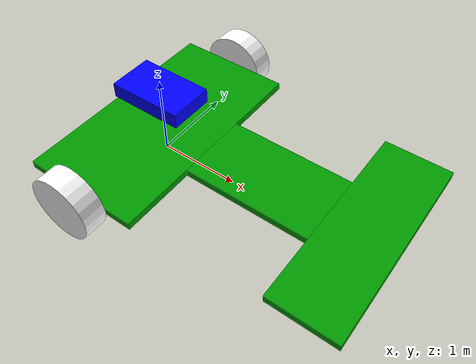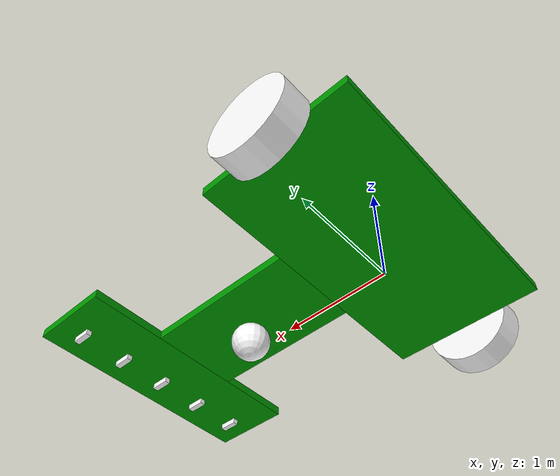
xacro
<?xml version="1.0"?>
<robot name="FLF" xmlns:xacro="http://www.ros.org/wiki/xacro">
<!-- Scaling Factor -->
<xacro:property name="scale" value="0.18"/>
<material name="grey">
<color rgba="0.7 0.7 0.7 1"/>
</material>
<material name="green">
<color rgba="0 0.6 0.0 1"/>
</material>
<material name="white">
<color rgba="1 1 1 1"/>
</material>

<!-- Base Footprint Link -->
<link name="base_footprint" />
<!-- Base Link -->
<link name="base_link">
<visual>
<geometry>
<box size="${8 * scale} ${15 * scale} ${0.5 * scale}"/>
</geometry>
<origin xyz="0 0 0" rpy="0 0 0"/>
<material name="green"/>
</visual>
<collision>
<geometry>
<box size="${8 * scale} ${15 * scale} ${0.5 * scale}"/>
</geometry>
<origin xyz="0 0 0" rpy="0 0 0"/>
</collision>
<inertial>
<mass value="2.0"/>
<origin xyz="0 0 0" rpy="0 0 0"/>
<inertia
  ixx="0.01" ixy="0.0" ixz="0.0"
  iyy="0.01" iyz="0.0"
  izz="0.01"/>
</inertial>
</link>
<!-- test -->
  <link name="test_link">
    <visual>
      <geometry>
        <box size="${1*scale} ${3*scale} ${5*scale}"/>
      </geometry>
      <material name="blue">
        <color rgba="0 0 1 1"/>
      </material>
    </visual>
  </link>
<!-- test -->
<!-- Neck Link -->
<link name="neck_link">
<visual>
<geometry>
<box size="${8.5 * scale} ${5 * scale} ${0.5 * scale}"/>
</geometry>
<origin xyz="0 0 0" rpy="0 0 0"/>
<material name="green"/>
</visual>
<collision>
<geometry>
<box size="${8.5 * scale} ${5 * scale} ${0.5 * scale}"/>
</geometry>
<origin xyz="0 0 0" rpy="0 0 0"/>
</collision>
<inertial>
<mass value="2.0"/>
<origin xyz="0 0 0" rpy="0 0 0"/>
<inertia
  ixx="0.01" ixy="0.0" ixz="0.0"
  iyy="0.01" iyz="0.0"
  izz="0.01"/>
</inertial>
</link>
<!-- IR Sensor Link -->
<link name="ir_link">
<visual>
<geometry>
<box size="${4.5 * scale} ${13.5 * scale} ${0.5 * scale}"/>
</geometry>
<origin xyz="0 0 0" rpy="0 0 0"/>
<material name="green"/>
</visual>
<collision>
<geometry>
<box size="${4.5 * scale} ${13.5 * scale} ${0.5 * scale}"/>
</geometry>
<origin xyz="0 0 0" rpy="0 0 0"/>
</collision>
<inertial>
<mass value="2.0"/>
<origin xyz="0 0 0" rpy="0 0 0"/>
<inertia
  ixx="0.01" ixy="0.0" ixz="0.0"
  iyy="0.01" iyz="0.0"
  izz="0.01"/>
</inertial>
</link>
<!-- IR Sensor 1 -->
<link name="ir_sensor_1">
    <visual>
        <geometry>
            <box size=" ${0.3 * scale} ${0.3 * scale} ${1 * scale}"/>
        </geometry>
        <origin xyz="${0.0 * scale} 0 ${0.5 * scale}" rpy="0 0 0"/>
        <material name="white"/>
    </visual>
    <collision>
        <geometry>
            <box size="${1.0 * scale} ${0.3 * scale} ${0.3 * scale}"/>
        </geometry>
        <origin xyz="${0.5 * scale} 0 0" rpy="0 0 0"/>
    </collision>
    <inertial>
        <mass value="0.1"/>
        <origin xyz="0 0 0"/>
        <inertia ixx="0.0001" ixy="0" ixz="0" iyy="0.0001" iyz="0" izz="0.0001"/>
    </inertial>
</link>
<link name="ir_sensor_2">
    <visual>
        <geometry>
            <box size="${0.3 * scale} ${0.3 * scale} ${1 * scale}"/>
        </geometry>
        <origin xyz="${0.0 * scale} 0 ${0.5 * scale}" rpy="0 0 0"/>
        <material name="white"/>
    </visual>
    <collision>
        <geometry>
            <box size="${1.0 * scale} ${0.3 * scale} ${0.3 * scale}"/>
        </geometry>
        <origin xyz="0 0 0" rpy="0 0 0"/>
    </collision>
    <inertial>
        <mass value="0.1"/>
        <origin xyz="0 0 0"/>
        <inertia ixx="0.0001" ixy="0" ixz="0" iyy="0.0001" iyz="0" izz="0.0001"/>
    </inertial>
</link>
<link name="ir_sensor_3">
    <visual>
        <geometry>
            <box size="${0.3 * scale} ${0.3 * scale} ${1 * scale}"/>
        </geometry>
        <origin xyz="${0.0 * scale} 0 ${0.5 * scale}" rpy="0 0 0"/>
        <material name="white"/>
    </visual>
    <collision>
        <geometry>
            <box size="${1.0 * scale} ${0.3 * scale} ${0.3 * scale}"/>
        </geometry>
        <origin xyz="0 0 0" rpy="0 0 0"/>
    </collision>
    <inertial>
        <mass value="0.1"/>
        <origin xyz="0 0 0"/>
        <inertia ixx="0.0001" ixy="0" ixz="0" iyy="0.0001" iyz="0" izz="0.0001"/>
    </inertial>
</link>
<link name="ir_sensor_4">
    <visual>
        <geometry>
            <box size="${0.3 * scale} ${0.3 * scale} ${1 * scale}"/>
        </geometry>
        <origin xyz="${0.0 * scale} 0 ${0.5 * scale}" rpy="0 0 0"/>
        <material name="white"/>
    </visual>
    <collision>
        <geometry>
            <box size="${1.0 * scale} ${0.3 * scale} ${0.3 * scale}"/>
        </geometry>
        <origin xyz="0 0 0" rpy="0 0 0"/>
    </collision>
    <inertial>
        <mass value="0.1"/>
        <origin xyz="0 0 0"/>
        <inertia ixx="0.0001" ixy="0" ixz="0" iyy="0.0001" iyz="0" izz="0.0001"/>
    </inertial>
</link>
<link name="ir_sensor_5">
    <visual>
        <geometry>
            <box size="${0.3 * scale} ${0.3 * scale} ${1 * scale}"/>
        </geometry>
        <origin xyz="${0.0 * scale} 0 ${0.5 * scale}" rpy="0 0 0"/>
        <material name="white"/>
    </visual>
    <collision>
        <geometry>
            <box size="${1.0 * scale} ${0.3 * scale} ${0.3 * scale}"/>
        </geometry>
        <origin xyz="0 0 0" rpy="0 0 0"/>
    </collision>
    <inertial>
        <mass value="0.1"/>
        <origin xyz="0 0 0"/>
        <inertia ixx="0.0001" ixy="0" ixz="0" iyy="0.0001" iyz="0" izz="0.0001"/>
    </inertial>
</link>

<!-- Left Wheel -->
<link name="left_wheel">
<visual>
<geometry>
<cylinder radius="${2.15 * scale}" length="${1.5 * scale}"/>
</geometry>
<origin xyz="0 0 0" rpy="0 0 0"/>
<material name="white"/>
</visual>
<collision>
<geometry>
<cylinder radius="${2.15 * scale}" length="${1.5 * scale}"/>
</geometry>
<origin xyz="0 0 0" rpy="0 0 0"/>
</collision>
<inertial>
<mass value="0.1"/>
<origin xyz="0 0 0" rpy="0 0 0"/>
<inertia
  ixx="0.00001" ixy="0.0" ixz="0.0"
  iyy="0.00001" iyz="0.0"
  izz="0.00002"/>
</inertial>
</link>
<!-- Right Wheel -->
<link name="right_wheel">
<visual>
<geometry>
<cylinder radius="${2.15 * scale}" length="${1.5 * scale}"/>
</geometry>
<origin xyz="0 0 0" rpy="0 0 0"/>
<material name="white"/>
</visual>
<collision>
<geometry>
<cylinder radius="${2.15 * scale}" length="${1.5 * scale}"/>
</geometry>
<origin xyz="0 0 0" rpy="0 0 0"/>
</collision>
<inertial>
<mass value="0.1"/>
<origin xyz="0 0 0" rpy="0 0 0"/>
<inertia
  ixx="0.00001" ixy="0.0" ixz="0.0"
  iyy="0.00001" iyz="0.0"
  izz="0.00002"/>
</inertial>
</link>
<link name="caster_wheel">
    <visual>
        <geometry>
            <sphere radius="${1*scale}"/> <!-- Radius = 1.075, so diameter = 2.15 -->
        </geometry>
        <material name="white"/>
    </visual>
    <collision>

        <geometry>
            <sphere radius="${1*scale}"/>
        </geometry>
        <surface>
    <contact>
      <collide_bitmask>0x02</collide_bitmask>
    </contact>
  </surface>
    </collision>
    <inertial>
        <mass value="0.05"/>
        <origin xyz="0 0 0"/>
        <inertia ixx="0.001" iyy="0.001" izz="0.001" ixy="0" ixz="0" iyz="0"/>
    </inertial>
</link>
<!-- Joints -->
<joint name="base_footprint_joint" type="fixed">
<parent link="base_footprint"/>
<child link="base_link"/>
<origin xyz="0 0 ${2.15 * scale}" rpy="0 0 0"/>
</joint>
<joint name="base_neck_joint" type="fixed">
<parent link="base_link"/>
<child link="neck_link"/>
<origin xyz="${8.25 * scale} 0 0" rpy="0 0 0"/>
</joint>
<joint name="base_ir_joint" type="fixed">
<parent link="base_link"/>
<child link="ir_link"/>
<origin xyz="${14.75 * scale} 0 0" rpy="0 0 0"/>
</joint>
<joint name="base_left_wheel_joint" type="continuous">
  <parent link="base_link"/>
  <child link="left_wheel"/>
  <origin xyz="0 ${(8.25 * scale)} 0" rpy="${-pi/2} 0 0"/>
  <axis xyz="0 0 1"/>
    <dynamics damping="0.5" friction="0.5"/>
</joint>

<joint name="base_right_wheel_joint" type="continuous">
  <parent link="base_link"/>
  <child link="right_wheel"/>
  <origin xyz="0 ${(-8.25 * scale)} 0" rpy="${-pi/2} 0 0"/>
  <axis xyz="0 0 1"/>
    <dynamics damping="0.5" friction="0.5"/>
</joint>
<!-- Joint to Attach Caster to Neck -->
<joint name="caster_joint" type="fixed">
    <parent link="neck_link"/>
    <child link="caster_wheel"/>
    <origin xyz="0 0 ${-1.35*scale}" rpy="0 0 0"/> <!-- Places caster exactly on the ground -->
</joint>
<joint name="ir_sensor_1_joint" type="fixed">
    <parent link="ir_link"/>
    <child link="ir_sensor_1"/>
    <origin xyz="${0 * scale} 0 ${-0.40 * scale}" rpy="0 1.57 0"/></joint>
<joint name="ir_sensor_2_joint" type="fixed">
    <parent link="ir_link"/>
    <child link="ir_sensor_2"/>
    <origin xyz="${0 * scale} ${2.7 * scale} ${-0.40 * scale}" rpy="0 1.57 0"/></joint>
<joint name="ir_sensor_3_joint" type="fixed">
    <parent link="ir_link"/>
    <child link="ir_sensor_3"/>
    <origin xyz="${0 * scale} ${2 * 2.7 * scale} ${-0.40 * scale}" rpy="0 1.57 0"/></joint>
<joint name="ir_sensor_4_joint" type="fixed">
    <parent link="ir_link"/>
    <child link="ir_sensor_4"/>
    <origin xyz="${0 * scale} ${-2.7 * scale} ${-0.40 * scale}" rpy="0 1.57 0"/></joint>
<joint name="ir_sensor_5_joint" type="fixed">
    <parent link="ir_link"/>
    <child link="ir_sensor_5"/>
    <origin xyz="${0 * scale} ${2 * -2.7 * scale} ${-0.40 * scale}" rpy="0 1.57 0"/></joint>

<!--test joiont -->
  <joint name="test_joint" type="fixed">
    <parent link="base_link"/>
    <child link="test_link"/>
    <origin xyz="0 0 ${2.57*scale}" rpy="0 1.57 0"/>
  </joint>

<!--test joiont -->

<!-- Gazebo specific elements -->
<gazebo reference="left_wheel">
<material>Gazebo/Blue</material>
  <mu1>1.0</mu1>
  <mu2>1.0</mu2>
  <kp>1000.0</kp>
  <kd>100.0</kd>
  <fdir1>1 0 0</fdir1>
</gazebo>

<gazebo reference="right_wheel">
<material>Gazebo/Blue</material>
  <mu1>1.0</mu1>
  <mu2>1.0</mu2>
  <kp>1000.0</kp>
  <kd>100.0</kd>
  <fdir1>1 0 0</fdir1>
</gazebo>

<gazebo reference="caster_wheel">
<material>Gazebo/Blue</material>
  <mu1>0.000005</mu1>
  <mu2>0.000005</mu2>
</gazebo>

<!-- IR sensor plugins -->
<!--test pugin-->
  <gazebo reference="test_link">
    <sensor type="ray" name="test_sensor">
      <update_rate>30</update_rate>
      <visualize>true</visualize>
      <ray>
        <scan>
          <horizontal>
            <samples>10</samples>
            <resolution>1</resolution>
            <min_angle>-0.1</min_angle>
            <max_angle>0.1</max_angle>
          </horizontal>
        </scan>
        <range>
          <min>0.01</min>
          <max>1.0</max>
          <resolution>0.01</resolution>
        </range>
      </ray>
      <plugin name="sensor_plugin" filename="libgazebo_ros_ray_sensor.so">
  <ros>
    <namespace>/</namespace>
    <remapping>~/out:=/test_sensor</remapping>
  </ros>
  <output_type>sensor_msgs/LaserScan</output_type>
  <frame_name>sensor_link</frame_name>
</plugin>
    </sensor>
  </gazebo>
<!--test pugin-->

<gazebo reference="ir_sensor_1">
  <sensor type="ray" name="ir_sensor_1">
    <update_rate>30</update_rate>
          <visualize>true</visualize>
    <ray>
        <scan>
          <horizontal>
            <samples>10</samples>
            <resolution>1</resolution>
            <min_angle>-0.1</min_angle>
            <max_angle>0.1</max_angle>
          </horizontal>
        </scan>
        <range>
          <min>0.3</min>
          <max>2</max>
          <resolution>0.01</resolution>
        </range>
      </ray>
    <plugin name="ir_sensor_1_plugin" filename="libgazebo_ros_ray_sensor.so">
      <ros>
        <namespace>/</namespace>

          <remapping>~/out:=/ir_sensor_1</remapping>

      </ros>
      <output_type>sensor_msgs/LaserScan</output_type>
      <frame_name>ir_sensor_1</frame_name>
    </plugin>
  </sensor>
</gazebo>

<gazebo reference="ir_sensor_2">
  <sensor type="ray" name="ir_sensor_2">
    <update_rate>30</update_rate>
          <visualize>true</visualize>

    <ray>
        <scan>
          <horizontal>
            <samples>10</samples>
            <resolution>1</resolution>
            <min_angle>-0.1</min_angle>
            <max_angle>0.1</max_angle>
          </horizontal>
        </scan>
        <range>
          <min>0.3</min>
          <max>2</max>
          <resolution>0.01</resolution>
        </range>
      </ray>
    <plugin name="ir_sensor_2_plugin" filename="libgazebo_ros_ray_sensor.so">
      <ros>
        <namespace>/</namespace>

          <remapping>~/out:=/ir_sensor_2</remapping>

      </ros>
      <output_type>sensor_msgs/LaserScan</output_type>
      <frame_name>ir_sensor_2</frame_name>
    </plugin>
  </sensor>
</gazebo>

<gazebo reference="ir_sensor_3">
  <sensor type="ray" name="ir_sensor_3">
    <update_rate>30</update_rate>
    <visualize>true</visualize>

    <ray>
        <scan>
          <horizontal>
            <samples>10</samples>
            <resolution>1</resolution>
            <min_angle>-0.1</min_angle>
            <max_angle>0.1</max_angle>
          </horizontal>
        </scan>
        <range>
          <min>0.3</min>
          <max>2</max>
          <resolution>0.01</resolution>
        </range>
      </ray>
    <plugin name="ir_sensor_3_plugin" filename="libgazebo_ros_ray_sensor.so">
      <ros>
        <namespace>/</namespace>

          <remapping>~/out:=/ir_sensor_3</remapping>

      </ros>
      <output_type>sensor_msgs/LaserScan</output_type>
      <frame_name>ir_sensor_3</frame_name>
    </plugin>
  </sensor>
</gazebo>

<gazebo reference="ir_sensor_4">
  <sensor type="ray" name="ir_sensor_4">
    <update_rate>30</update_rate>
      <visualize>true</visualize>

    <ray>
        <scan>
          <horizontal>
            <samples>10</samples>
            <resolution>1</resolution>
            <min_angle>-0.1</min_angle>
            <max_angle>0.1</max_angle>
          </horizontal>
        </scan>
        <range>
          <min>0.3</min>
          <max>2</max>
          <resolution>0.01</resolution>
        </range>
      </ray>
    <plugin name="ir_sensor_4_plugin" filename="libgazebo_ros_ray_sensor.so">
      <ros>
        <namespace>/</namespace>

          <remapping>~/out:=/ir_sensor_4</remapping>

      </ros>
      <output_type>sensor_msgs/LaserScan</output_type>
      <frame_name>ir_sensor_4</frame_name>
    </plugin>
  </sensor>
</gazebo>

<gazebo reference="ir_sensor_5">
  <sensor type="ray" name="ir_sensor_5">
    <update_rate>30</update_rate>
          <visualize>true</visualize>

    <ray>
        <scan>
          <horizontal>
            <samples>10</samples>
            <resolution>1</resolution>
            <min_angle>-0.1</min_angle>
            <max_angle>0.1</max_angle>
          </horizontal>
        </scan>
        <range>
          <min>0.3</min>
          <max>2</max>
          <resolution>0.01</resolution>
        </range>
      </ray>
    <plugin name="ir_sensor_5_plugin" filename="libgazebo_ros_ray_sensor.so">
      <ros>
        <namespace>/</namespace>

          <remapping>~/out:=/ir_sensor_5</remapping>

      </ros>
      <output_type>sensor_msgs/LaserScan</output_type>
      <frame_name>ir_sensor_5</frame_name>
    </plugin>
  </sensor>
</gazebo>

<gazebo>
  <plugin name="differential_drive_controller" filename="libgazebo_ros_diff_drive.so">
    <update_rate>30</update_rate>
    <left_joint>base_left_wheel_joint</left_joint>
    <right_joint>base_right_wheel_joint</right_joint>
    <wheel_separation>${8.25 * 2 * scale}</wheel_separation>
    <wheel_diameter>${2.15 * 2 * scale}</wheel_diameter>
    <max_wheel_acceleration>1.0</max_wheel_acceleration>
    <max_wheel_torque>20</max_wheel_torque>
    <command_topic>cmd_vel</command_topic>
    <publish_odom>true</publish_odom>
    <publish_odom_tf>true</publish_odom_tf>
    <odometry_topic>odom</odometry_topic>
    <odometry_frame>odom</odometry_frame>
    <robot_base_frame>base_link</robot_base_frame>
  </plugin>
</gazebo>
</robot>
